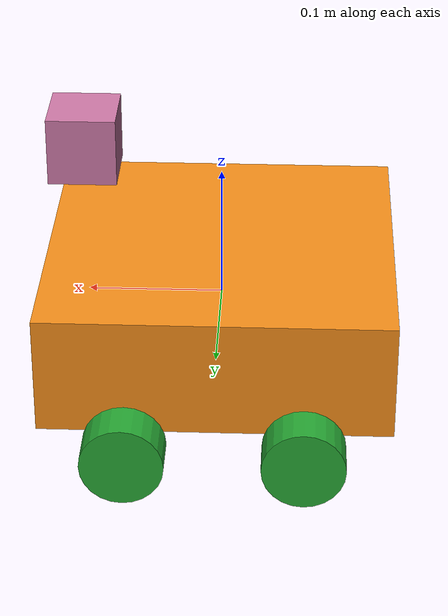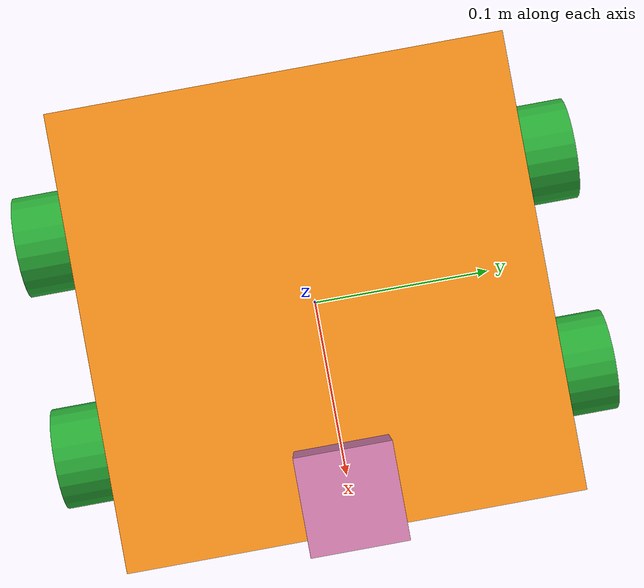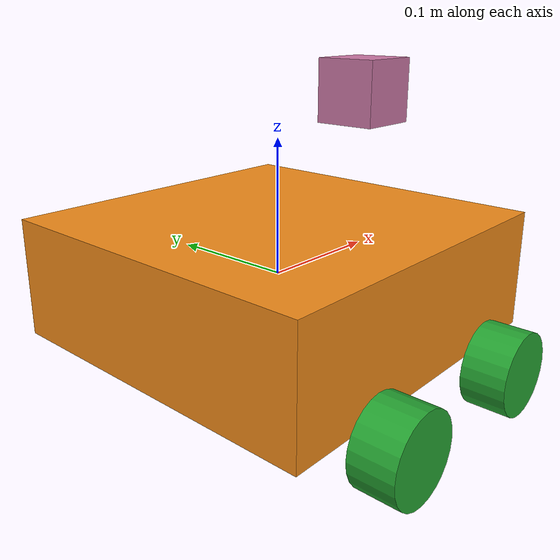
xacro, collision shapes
<?xml version='1.0'?>

<robot name="mogi_bot_skid_steer" xmlns:xacro="http://www.ros.org/wiki/xacro">

  <!-- RViz colors -->
  <xacro:include filename="$(find bme_gazebo_basics)/urdf/materials.xacro" />

  <!-- Include wheel macros -->
  <xacro:include filename="$(find bme_gazebo_basics)/urdf/wheel.xacro" />

  <!-- Pi -->
  <xacro:property name="M_PI" value="3.14159"/>

  <!-- Base Size -->
  <xacro:property name="base_x_size" value="0.256" />
  <xacro:property name="base_y_size" value="0.256" />
  <xacro:property name="base_z_size" value="0.088" />

  <!-- Wheel Mounting Positions -->
  <xacro:property name="wheelbase" value="0.128" />
  <xacro:property name="track" value="0.3" />
  <xacro:property name="wheel_vertical_offset" value="-0.05" />

  <!-- Wheel Properties -->
  <xacro:property name="wheel_length" value="0.0315" />
  <xacro:property name="wheel_radius" value="0.03" />

  <link name="base_footprint"></link>

  <joint name="base_footprint_joint" type="fixed">
    <origin xyz="0 0 0" rpy="0 0 0" />
    <parent link="base_footprint"/>
    <child link="base_link" />
  </joint>

  <!-- Robot chassis -->
  <link name='base_link'>
    <pose>0 0 0.1 0 0 0</pose>

    <inertial>
      <mass value="15.0"/>
      <origin xyz="0.0 0 0" rpy="0 0 0"/>
      <inertia
          ixx="0.1" ixy="0" ixz="0"
          iyy="0.1" iyz="0"
          izz="0.1"
      />
    </inertial>

    <collision name='collision'>
      <origin xyz="0 0 0" rpy="0 0 0"/>
      <geometry>
        <box size="${base_x_size} ${base_y_size} ${base_z_size}"/>
      </geometry>
    </collision>

    <visual name='base_link_visual'>
      <origin xyz="0 0 0" rpy="0 0 0"/>
      <geometry>
        <box size="${base_x_size} ${base_y_size} ${base_z_size}" />
      </geometry>
      <material name="orange"/>
    </visual>

  </link>

  <!-- Wheel macros -->
  <xacro:test_wheel wheel_prefix="front_left">
    <origin xyz="${wheelbase/2} ${track/2} ${wheel_vertical_offset}" rpy="0 0 0" />
  </xacro:test_wheel>
  <xacro:test_wheel wheel_prefix="front_right">
    <origin xyz="${wheelbase/2} ${-track/2} ${wheel_vertical_offset}" rpy="0 0 0" />
  </xacro:test_wheel>
  <xacro:test_wheel wheel_prefix="rear_left">
    <origin xyz="${-wheelbase/2} ${track/2} ${wheel_vertical_offset}" rpy="0 0 0" />
  </xacro:test_wheel>
  <xacro:test_wheel wheel_prefix="rear_right">
    <origin xyz="${-wheelbase/2} ${-track/2} ${wheel_vertical_offset}" rpy="0 0 0" />
  </xacro:test_wheel>

    <!-- Camera -->
  <joint type="fixed" name="camera_joint">
    <origin xyz="0.1 0 0.125" rpy="0 0 0"/>
    <child link="camera_link"/>
    <parent link="base_link"/>
    <axis xyz="0 1 0" />
  </joint>

  <link name='camera_link'>
    <pose>0 0 0 0 0 0</pose>
    <inertial>
      <mass value="0.1"/>
      <origin xyz="0 0 0" rpy="0 0 0"/>
      <inertia
          ixx="1e-6" ixy="0" ixz="0"
          iyy="1e-6" iyz="0"
          izz="1e-6"
      />
    </inertial>

    <collision name='collision'>
      <origin xyz="0 0 0" rpy="0 0 0"/>
      <geometry>
        <box size=".05 .05 .05"/>
      </geometry>
    </collision>

    <visual name='camera_link_visual'>
      <origin xyz="0 0 0" rpy="0 0 0"/>
      <geometry>
        <box size=".05 .05 .05"/>
      </geometry>
    </visual>

  </link>

  <joint type="fixed" name="camera_optical_joint">
    <origin xyz="0 0 0" rpy="-1.5707 0 -1.5707"/>
    <child link="camera_link_optical"/>
    <parent link="camera_link"/>
  </joint>

  <link name="camera_link_optical">
  </link>

</robot>

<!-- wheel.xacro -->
<robot xmlns:xacro="http://ros.org/wiki/xacro" name="test_wheel">

	<xacro:macro name="test_wheel" params="wheel_prefix *joint_pose">
		<link name="${wheel_prefix}_wheel_link">
			<inertial>
				<mass value="2.637" />
				<origin xyz="0 0 0" rpy="0 ${M_PI/2} ${M_PI/2}"/>
				<inertia  ixx="0.02467" ixy="0" ixz="0" iyy="0.04411" iyz="0" izz="0.02467" />
			</inertial>
			<visual>
				<origin xyz="0 0 0" rpy="0 ${M_PI/2} ${M_PI/2}" />
				<geometry>
                    <!--cylinder length="${wheel_length}" radius="${wheel_radius}" /-->
                    <mesh filename = "package://bme_gazebo_basics/meshes/mecanum_wheel.dae"/>
				</geometry>
                <material name="green"/>
			</visual>
			<collision>
				<origin xyz="0 0 0" rpy="0 ${M_PI/2} ${M_PI/2}" />
				<geometry>
					<cylinder length="${wheel_length}" radius="${wheel_radius}" />
				</geometry>
			</collision>
		</link>

		<gazebo reference="${wheel_prefix}_wheel_link">
			<mu1 value="1.0"/>
			<mu2 value="1.0"/>
			<kp value="10000000.0" />
			<kd value="1.0" />
			<fdir1 value="1 0 0"/>
		</gazebo>

		<joint name="${wheel_prefix}_wheel" type="continuous">
			<parent link="base_link"/>
			<child link="${wheel_prefix}_wheel_link"/>
			<xacro:insert_block name="joint_pose"/>
			<axis xyz="0 1 0" rpy="0 0 0" />
		</joint>

	</xacro:macro>
</robot>
